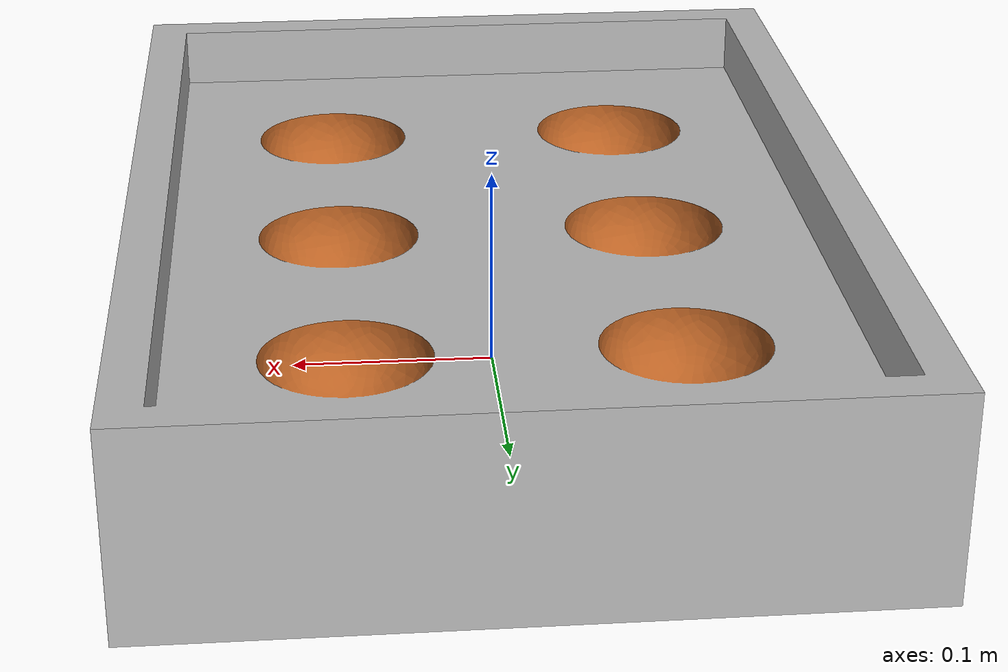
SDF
<?xml version="1.0"?>

<sdf version="1.6">
  <model name='fruit_tray'>
    <static>true</static>
    <link name="body">
      <pose>0 0 0 0 0 0</pose>

        <visual name="visual">
          <geometry>
            <mesh><uri>model://fruit_tray/meshes/Fruit_Tray.dae</uri></mesh>
          </geometry>
        </visual>

        <collision name="collision">
          <geometry>
            <mesh><uri>model://fruit_tray/meshes/Fruit_Tray_Collision.dae</uri></mesh>
          </geometry>
        </collision>

    </link>
  </model>
</sdf>
